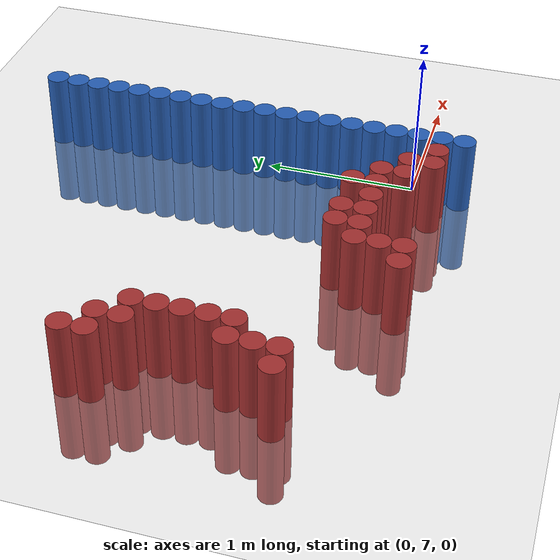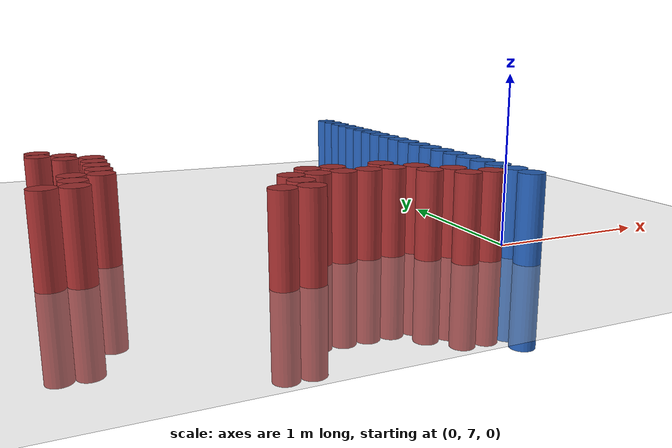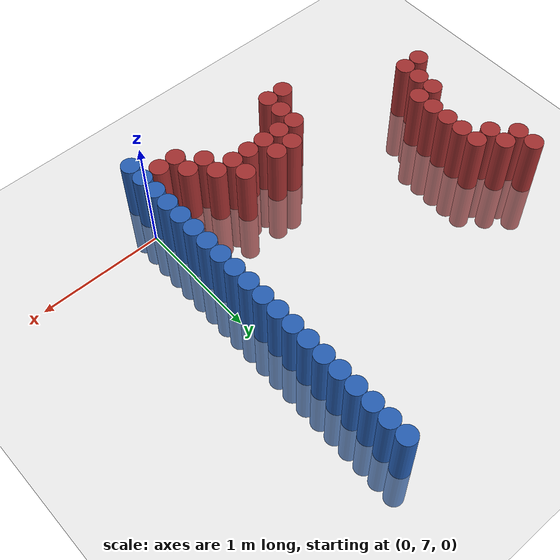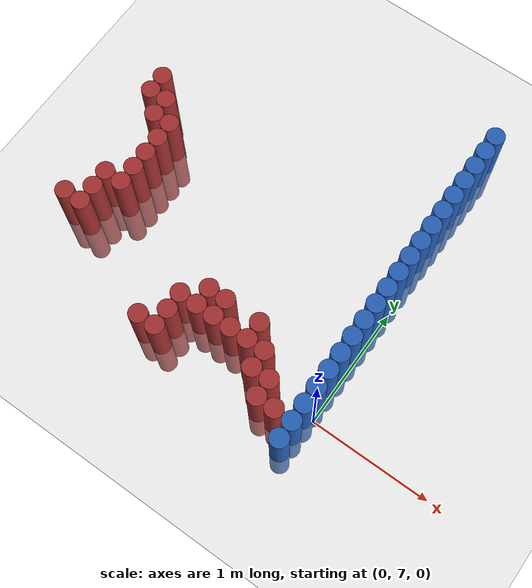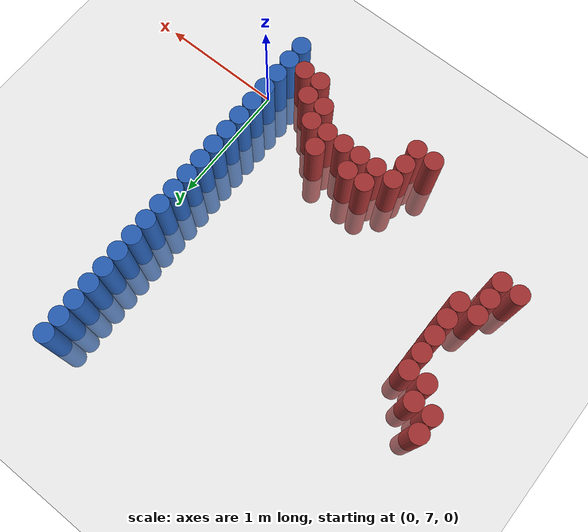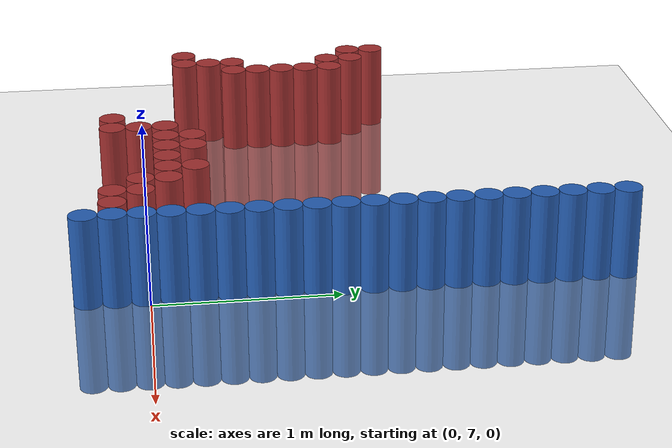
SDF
<sdf version="1.6">
 <world name="default">
  <model name="ground_plane">
   <static>1</static>
   <link name="link">
    <collision name="collision">
     <geometry><plane><normal>0 0 1</normal><size>100 100</size></plane></geometry>
     <surface><friction><ode><mu>100</mu><mu2>50</mu2></ode></friction></surface>
    </collision>
    <visual name="visual">
     <cast_shadows>0</cast_shadows>
     <geometry><plane><normal>0 0 1</normal><size>100 100</size></plane></geometry>
     <material>
      <script><uri>file://media/materials/scripts/gazebo.material</uri><name>Gazebo/Grey</name></script>
     </material>
    </visual>
   </link>
  </model>
  <model name="unit_cylinder_157">
   <static>1</static>
   <pose>-2.475000 7.275000 0.000000 0.000000 0.000000 0.000000</pose>
   <link name="link">
    <inertial>
     <mass>1</mass>
     <inertia><ixx>0.145833</ixx><ixy>0</ixy><ixz>0</ixz><iyy>0.145833</iyy><iyz>0</iyz><izz>0.125</izz></inertia>
    </inertial>
    <collision name="collision">
     <geometry><cylinder><radius>0.075000</radius><length>1</length></cylinder></geometry>
    </collision>
    <visual name="visual">
     <geometry><cylinder><radius>0.075000</radius><length>1</length></cylinder></geometry>
     <material>
      <ambient>0.648000 0.192000 0.192000 1</ambient>
      <diffuse>0.648000 0.192000 0.192000 1</diffuse>
     </material>
     <material>
      <script><name>Gazebo/Grey</name><uri>file://media/materials/scripts/gazebo.material</uri></script>
     </material>
    </visual>
   </link>
  </model>
  <model name="unit_cylinder_158">
   <static>1</static>
   <pose>-2.475000 8.325000 0.000000 0.000000 0.000000 0.000000</pose>
   <link name="link">
    <inertial>
     <mass>1</mass>
     <inertia><ixx>0.145833</ixx><ixy>0</ixy><ixz>0</ixz><iyy>0.145833</iyy><iyz>0</iyz><izz>0.125</izz></inertia>
    </inertial>
    <collision name="collision">
     <geometry><cylinder><radius>0.075000</radius><length>1</length></cylinder></geometry>
    </collision>
    <visual name="visual">
     <geometry><cylinder><radius>0.075000</radius><length>1</length></cylinder></geometry>
     <material>
      <ambient>0.648000 0.192000 0.192000 1</ambient>
      <diffuse>0.648000 0.192000 0.192000 1</diffuse>
     </material>
     <material>
      <script><name>Gazebo/Grey</name><uri>file://media/materials/scripts/gazebo.material</uri></script>
     </material>
    </visual>
   </link>
  </model>
  <model name="unit_cylinder_159">
   <static>1</static>
   <pose>-2.475000 8.475000 0.000000 0.000000 0.000000 0.000000</pose>
   <link name="link">
    <inertial>
     <mass>1</mass>
     <inertia><ixx>0.145833</ixx><ixy>0</ixy><ixz>0</ixz><iyy>0.145833</iyy><iyz>0</iyz><izz>0.125</izz></inertia>
    </inertial>
    <collision name="collision">
     <geometry><cylinder><radius>0.075000</radius><length>1</length></cylinder></geometry>
    </collision>
    <visual name="visual">
     <geometry><cylinder><radius>0.075000</radius><length>1</length></cylinder></geometry>
     <material>
      <ambient>0.648000 0.192000 0.192000 1</ambient>
      <diffuse>0.648000 0.192000 0.192000 1</diffuse>
     </material>
     <material>
      <script><name>Gazebo/Grey</name><uri>file://media/materials/scripts/gazebo.material</uri></script>
     </material>
    </visual>
   </link>
  </model>
  <model name="unit_cylinder_160">
   <static>1</static>
   <pose>-2.325000 7.275000 0.000000 0.000000 0.000000 0.000000</pose>
   <link name="link">
    <inertial>
     <mass>1</mass>
     <inertia><ixx>0.145833</ixx><ixy>0</ixy><ixz>0</ixz><iyy>0.145833</iyy><iyz>0</iyz><izz>0.125</izz></inertia>
    </inertial>
    <collision name="collision">
     <geometry><cylinder><radius>0.075000</radius><length>1</length></cylinder></geometry>
    </collision>
    <visual name="visual">
     <geometry><cylinder><radius>0.075000</radius><length>1</length></cylinder></geometry>
     <material>
      <ambient>0.648000 0.192000 0.192000 1</ambient>
      <diffuse>0.648000 0.192000 0.192000 1</diffuse>
     </material>
     <material>
      <script><name>Gazebo/Grey</name><uri>file://media/materials/scripts/gazebo.material</uri></script>
     </material>
    </visual>
   </link>
  </model>
  <model name="unit_cylinder_161">
   <static>1</static>
   <pose>-2.325000 7.425000 0.000000 0.000000 0.000000 0.000000</pose>
   <link name="link">
    <inertial>
     <mass>1</mass>
     <inertia><ixx>0.145833</ixx><ixy>0</ixy><ixz>0</ixz><iyy>0.145833</iyy><iyz>0</iyz><izz>0.125</izz></inertia>
    </inertial>
    <collision name="collision">
     <geometry><cylinder><radius>0.075000</radius><length>1</length></cylinder></geometry>
    </collision>
    <visual name="visual">
     <geometry><cylinder><radius>0.075000</radius><length>1</length></cylinder></geometry>
     <material>
      <ambient>0.648000 0.192000 0.192000 1</ambient>
      <diffuse>0.648000 0.192000 0.192000 1</diffuse>
     </material>
     <material>
      <script><name>Gazebo/Grey</name><uri>file://media/materials/scripts/gazebo.material</uri></script>
     </material>
    </visual>
   </link>
  </model>
  <model name="unit_cylinder_162">
   <static>1</static>
   <pose>-2.325000 7.575000 0.000000 0.000000 0.000000 0.000000</pose>
   <link name="link">
    <inertial>
     <mass>1</mass>
     <inertia><ixx>0.145833</ixx><ixy>0</ixy><ixz>0</ixz><iyy>0.145833</iyy><iyz>0</iyz><izz>0.125</izz></inertia>
    </inertial>
    <collision name="collision">
     <geometry><cylinder><radius>0.075000</radius><length>1</length></cylinder></geometry>
    </collision>
    <visual name="visual">
     <geometry><cylinder><radius>0.075000</radius><length>1</length></cylinder></geometry>
     <material>
      <ambient>0.648000 0.192000 0.192000 1</ambient>
      <diffuse>0.648000 0.192000 0.192000 1</diffuse>
     </material>
     <material>
      <script><name>Gazebo/Grey</name><uri>file://media/materials/scripts/gazebo.material</uri></script>
     </material>
    </visual>
   </link>
  </model>
  <model name="unit_cylinder_163">
   <static>1</static>
   <pose>-2.325000 8.175000 0.000000 0.000000 0.000000 0.000000</pose>
   <link name="link">
    <inertial>
     <mass>1</mass>
     <inertia><ixx>0.145833</ixx><ixy>0</ixy><ixz>0</ixz><iyy>0.145833</iyy><iyz>0</iyz><izz>0.125</izz></inertia>
    </inertial>
    <collision name="collision">
     <geometry><cylinder><radius>0.075000</radius><length>1</length></cylinder></geometry>
    </collision>
    <visual name="visual">
     <geometry><cylinder><radius>0.075000</radius><length>1</length></cylinder></geometry>
     <material>
      <ambient>0.648000 0.192000 0.192000 1</ambient>
      <diffuse>0.648000 0.192000 0.192000 1</diffuse>
     </material>
     <material>
      <script><name>Gazebo/Grey</name><uri>file://media/materials/scripts/gazebo.material</uri></script>
     </material>
    </visual>
   </link>
  </model>
  <model name="unit_cylinder_164">
   <static>1</static>
   <pose>-2.325000 8.325000 0.000000 0.000000 0.000000 0.000000</pose>
   <link name="link">
    <inertial>
     <mass>1</mass>
     <inertia><ixx>0.145833</ixx><ixy>0</ixy><ixz>0</ixz><iyy>0.145833</iyy><iyz>0</iyz><izz>0.125</izz></inertia>
    </inertial>
    <collision name="collision">
     <geometry><cylinder><radius>0.075000</radius><length>1</length></cylinder></geometry>
    </collision>
    <visual name="visual">
     <geometry><cylinder><radius>0.075000</radius><length>1</length></cylinder></geometry>
     <material>
      <ambient>0.648000 0.192000 0.192000 1</ambient>
      <diffuse>0.648000 0.192000 0.192000 1</diffuse>
     </material>
     <material>
      <script><name>Gazebo/Grey</name><uri>file://media/materials/scripts/gazebo.material</uri></script>
     </material>
    </visual>
   </link>
  </model>
  <model name="unit_cylinder_165">
   <static>1</static>
   <pose>-2.175000 7.575000 0.000000 0.000000 0.000000 0.000000</pose>
   <link name="link">
    <inertial>
     <mass>1</mass>
     <inertia><ixx>0.145833</ixx><ixy>0</ixy><ixz>0</ixz><iyy>0.145833</iyy><iyz>0</iyz><izz>0.125</izz></inertia>
    </inertial>
    <collision name="collision">
     <geometry><cylinder><radius>0.075000</radius><length>1</length></cylinder></geometry>
    </collision>
    <visual name="visual">
     <geometry><cylinder><radius>0.075000</radius><length>1</length></cylinder></geometry>
     <material>
      <ambient>0.648000 0.192000 0.192000 1</ambient>
      <diffuse>0.648000 0.192000 0.192000 1</diffuse>
     </material>
     <material>
      <script><name>Gazebo/Grey</name><uri>file://media/materials/scripts/gazebo.material</uri></script>
     </material>
    </visual>
   </link>
  </model>
  <model name="unit_cylinder_166">
   <static>1</static>
   <pose>-2.175000 7.725000 0.000000 0.000000 0.000000 0.000000</pose>
   <link name="link">
    <inertial>
     <mass>1</mass>
     <inertia><ixx>0.145833</ixx><ixy>0</ixy><ixz>0</ixz><iyy>0.145833</iyy><iyz>0</iyz><izz>0.125</izz></inertia>
    </inertial>
    <collision name="collision">
     <geometry><cylinder><radius>0.075000</radius><length>1</length></cylinder></geometry>
    </collision>
    <visual name="visual">
     <geometry><cylinder><radius>0.075000</radius><length>1</length></cylinder></geometry>
     <material>
      <ambient>0.648000 0.192000 0.192000 1</ambient>
      <diffuse>0.648000 0.192000 0.192000 1</diffuse>
     </material>
     <material>
      <script><name>Gazebo/Grey</name><uri>file://media/materials/scripts/gazebo.material</uri></script>
     </material>
    </visual>
   </link>
  </model>
  <model name="unit_cylinder_167">
   <static>1</static>
   <pose>-2.175000 7.875000 0.000000 0.000000 0.000000 0.000000</pose>
   <link name="link">
    <inertial>
     <mass>1</mass>
     <inertia><ixx>0.145833</ixx><ixy>0</ixy><ixz>0</ixz><iyy>0.145833</iyy><iyz>0</iyz><izz>0.125</izz></inertia>
    </inertial>
    <collision name="collision">
     <geometry><cylinder><radius>0.075000</radius><length>1</length></cylinder></geometry>
    </collision>
    <visual name="visual">
     <geometry><cylinder><radius>0.075000</radius><length>1</length></cylinder></geometry>
     <material>
      <ambient>0.648000 0.192000 0.192000 1</ambient>
      <diffuse>0.648000 0.192000 0.192000 1</diffuse>
     </material>
     <material>
      <script><name>Gazebo/Grey</name><uri>file://media/materials/scripts/gazebo.material</uri></script>
     </material>
    </visual>
   </link>
  </model>
  <model name="unit_cylinder_168">
   <static>1</static>
   <pose>-2.175000 8.025000 0.000000 0.000000 0.000000 0.000000</pose>
   <link name="link">
    <inertial>
     <mass>1</mass>
     <inertia><ixx>0.145833</ixx><ixy>0</ixy><ixz>0</ixz><iyy>0.145833</iyy><iyz>0</iyz><izz>0.125</izz></inertia>
    </inertial>
    <collision name="collision">
     <geometry><cylinder><radius>0.075000</radius><length>1</length></cylinder></geometry>
    </collision>
    <visual name="visual">
     <geometry><cylinder><radius>0.075000</radius><length>1</length></cylinder></geometry>
     <material>
      <ambient>0.648000 0.192000 0.192000 1</ambient>
      <diffuse>0.648000 0.192000 0.192000 1</diffuse>
     </material>
     <material>
      <script><name>Gazebo/Grey</name><uri>file://media/materials/scripts/gazebo.material</uri></script>
     </material>
    </visual>
   </link>
  </model>
  <model name="unit_cylinder_169">
   <static>1</static>
   <pose>-2.175000 8.175000 0.000000 0.000000 0.000000 0.000000</pose>
   <link name="link">
    <inertial>
     <mass>1</mass>
     <inertia><ixx>0.145833</ixx><ixy>0</ixy><ixz>0</ixz><iyy>0.145833</iyy><iyz>0</iyz><izz>0.125</izz></inertia>
    </inertial>
    <collision name="collision">
     <geometry><cylinder><radius>0.075000</radius><length>1</length></cylinder></geometry>
    </collision>
    <visual name="visual">
     <geometry><cylinder><radius>0.075000</radius><length>1</length></cylinder></geometry>
     <material>
      <ambient>0.648000 0.192000 0.192000 1</ambient>
      <diffuse>0.648000 0.192000 0.192000 1</diffuse>
     </material>
     <material>
      <script><name>Gazebo/Grey</name><uri>file://media/materials/scripts/gazebo.material</uri></script>
     </material>
    </visual>
   </link>
  </model>
  <model name="unit_cylinder_187">
   <static>1</static>
   <pose>-1.425000 6.825000 0.000000 0.000000 0.000000 0.000000</pose>
   <link name="link">
    <inertial>
     <mass>1</mass>
     <inertia><ixx>0.145833</ixx><ixy>0</ixy><ixz>0</ixz><iyy>0.145833</iyy><iyz>0</iyz><izz>0.125</izz></inertia>
    </inertial>
    <collision name="collision">
     <geometry><cylinder><radius>0.075000</radius><length>1</length></cylinder></geometry>
    </collision>
    <visual name="visual">
     <geometry><cylinder><radius>0.075000</radius><length>1</length></cylinder></geometry>
     <material>
      <ambient>0.648000 0.192000 0.192000 1</ambient>
      <diffuse>0.648000 0.192000 0.192000 1</diffuse>
     </material>
     <material>
      <script><name>Gazebo/Grey</name><uri>file://media/materials/scripts/gazebo.material</uri></script>
     </material>
    </visual>
   </link>
  </model>
  <model name="unit_cylinder_190">
   <static>1</static>
   <pose>-1.275000 6.825000 0.000000 0.000000 0.000000 0.000000</pose>
   <link name="link">
    <inertial>
     <mass>1</mass>
     <inertia><ixx>0.145833</ixx><ixy>0</ixy><ixz>0</ixz><iyy>0.145833</iyy><iyz>0</iyz><izz>0.125</izz></inertia>
    </inertial>
    <collision name="collision">
     <geometry><cylinder><radius>0.075000</radius><length>1</length></cylinder></geometry>
    </collision>
    <visual name="visual">
     <geometry><cylinder><radius>0.075000</radius><length>1</length></cylinder></geometry>
     <material>
      <ambient>0.648000 0.192000 0.192000 1</ambient>
      <diffuse>0.648000 0.192000 0.192000 1</diffuse>
     </material>
     <material>
      <script><name>Gazebo/Grey</name><uri>file://media/materials/scripts/gazebo.material</uri></script>
     </material>
    </visual>
   </link>
  </model>
  <model name="unit_cylinder_191">
   <static>1</static>
   <pose>-1.275000 6.975000 0.000000 0.000000 0.000000 0.000000</pose>
   <link name="link">
    <inertial>
     <mass>1</mass>
     <inertia><ixx>0.145833</ixx><ixy>0</ixy><ixz>0</ixz><iyy>0.145833</iyy><iyz>0</iyz><izz>0.125</izz></inertia>
    </inertial>
    <collision name="collision">
     <geometry><cylinder><radius>0.075000</radius><length>1</length></cylinder></geometry>
    </collision>
    <visual name="visual">
     <geometry><cylinder><radius>0.075000</radius><length>1</length></cylinder></geometry>
     <material>
      <ambient>0.648000 0.192000 0.192000 1</ambient>
      <diffuse>0.648000 0.192000 0.192000 1</diffuse>
     </material>
     <material>
      <script><name>Gazebo/Grey</name><uri>file://media/materials/scripts/gazebo.material</uri></script>
     </material>
    </visual>
   </link>
  </model>
  <model name="unit_cylinder_192">
   <static>1</static>
   <pose>-1.275000 7.125000 0.000000 0.000000 0.000000 0.000000</pose>
   <link name="link">
    <inertial>
     <mass>1</mass>
     <inertia><ixx>0.145833</ixx><ixy>0</ixy><ixz>0</ixz><iyy>0.145833</iyy><iyz>0</iyz><izz>0.125</izz></inertia>
    </inertial>
    <collision name="collision">
     <geometry><cylinder><radius>0.075000</radius><length>1</length></cylinder></geometry>
    </collision>
    <visual name="visual">
     <geometry><cylinder><radius>0.075000</radius><length>1</length></cylinder></geometry>
     <material>
      <ambient>0.648000 0.192000 0.192000 1</ambient>
      <diffuse>0.648000 0.192000 0.192000 1</diffuse>
     </material>
     <material>
      <script><name>Gazebo/Grey</name><uri>file://media/materials/scripts/gazebo.material</uri></script>
     </material>
    </visual>
   </link>
  </model>
  <model name="unit_cylinder_195">
   <static>1</static>
   <pose>-1.125000 7.125000 0.000000 0.000000 0.000000 0.000000</pose>
   <link name="link">
    <inertial>
     <mass>1</mass>
     <inertia><ixx>0.145833</ixx><ixy>0</ixy><ixz>0</ixz><iyy>0.145833</iyy><iyz>0</iyz><izz>0.125</izz></inertia>
    </inertial>
    <collision name="collision">
     <geometry><cylinder><radius>0.075000</radius><length>1</length></cylinder></geometry>
    </collision>
    <visual name="visual">
     <geometry><cylinder><radius>0.075000</radius><length>1</length></cylinder></geometry>
     <material>
      <ambient>0.648000 0.192000 0.192000 1</ambient>
      <diffuse>0.648000 0.192000 0.192000 1</diffuse>
     </material>
     <material>
      <script><name>Gazebo/Grey</name><uri>file://media/materials/scripts/gazebo.material</uri></script>
     </material>
    </visual>
   </link>
  </model>
  <model name="unit_cylinder_196">
   <static>1</static>
   <pose>-1.125000 7.275000 0.000000 0.000000 0.000000 0.000000</pose>
   <link name="link">
    <inertial>
     <mass>1</mass>
     <inertia><ixx>0.145833</ixx><ixy>0</ixy><ixz>0</ixz><iyy>0.145833</iyy><iyz>0</iyz><izz>0.125</izz></inertia>
    </inertial>
    <collision name="collision">
     <geometry><cylinder><radius>0.075000</radius><length>1</length></cylinder></geometry>
    </collision>
    <visual name="visual">
     <geometry><cylinder><radius>0.075000</radius><length>1</length></cylinder></geometry>
     <material>
      <ambient>0.648000 0.192000 0.192000 1</ambient>
      <diffuse>0.648000 0.192000 0.192000 1</diffuse>
     </material>
     <material>
      <script><name>Gazebo/Grey</name><uri>file://media/materials/scripts/gazebo.material</uri></script>
     </material>
    </visual>
   </link>
  </model>
  <model name="unit_cylinder_198">
   <static>1</static>
   <pose>-0.975000 7.125000 0.000000 0.000000 0.000000 0.000000</pose>
   <link name="link">
    <inertial>
     <mass>1</mass>
     <inertia><ixx>0.145833</ixx><ixy>0</ixy><ixz>0</ixz><iyy>0.145833</iyy><iyz>0</iyz><izz>0.125</izz></inertia>
    </inertial>
    <collision name="collision">
     <geometry><cylinder><radius>0.075000</radius><length>1</length></cylinder></geometry>
    </collision>
    <visual name="visual">
     <geometry><cylinder><radius>0.075000</radius><length>1</length></cylinder></geometry>
     <material>
      <ambient>0.648000 0.192000 0.192000 1</ambient>
      <diffuse>0.648000 0.192000 0.192000 1</diffuse>
     </material>
     <material>
      <script><name>Gazebo/Grey</name><uri>file://media/materials/scripts/gazebo.material</uri></script>
     </material>
    </visual>
   </link>
  </model>
  <model name="unit_cylinder_199">
   <static>1</static>
   <pose>-0.975000 7.275000 0.000000 0.000000 0.000000 0.000000</pose>
   <link name="link">
    <inertial>
     <mass>1</mass>
     <inertia><ixx>0.145833</ixx><ixy>0</ixy><ixz>0</ixz><iyy>0.145833</iyy><iyz>0</iyz><izz>0.125</izz></inertia>
    </inertial>
    <collision name="collision">
     <geometry><cylinder><radius>0.075000</radius><length>1</length></cylinder></geometry>
    </collision>
    <visual name="visual">
     <geometry><cylinder><radius>0.075000</radius><length>1</length></cylinder></geometry>
     <material>
      <ambient>0.648000 0.192000 0.192000 1</ambient>
      <diffuse>0.648000 0.192000 0.192000 1</diffuse>
     </material>
     <material>
      <script><name>Gazebo/Grey</name><uri>file://media/materials/scripts/gazebo.material</uri></script>
     </material>
    </visual>
   </link>
  </model>
  <model name="unit_cylinder_201">
   <static>1</static>
   <pose>-0.825000 7.125000 0.000000 0.000000 0.000000 0.000000</pose>
   <link name="link">
    <inertial>
     <mass>1</mass>
     <inertia><ixx>0.145833</ixx><ixy>0</ixy><ixz>0</ixz><iyy>0.145833</iyy><iyz>0</iyz><izz>0.125</izz></inertia>
    </inertial>
    <collision name="collision">
     <geometry><cylinder><radius>0.075000</radius><length>1</length></cylinder></geometry>
    </collision>
    <visual name="visual">
     <geometry><cylinder><radius>0.075000</radius><length>1</length></cylinder></geometry>
     <material>
      <ambient>0.648000 0.192000 0.192000 1</ambient>
      <diffuse>0.648000 0.192000 0.192000 1</diffuse>
     </material>
     <material>
      <script><name>Gazebo/Grey</name><uri>file://media/materials/scripts/gazebo.material</uri></script>
     </material>
    </visual>
   </link>
  </model>
  <model name="unit_cylinder_203">
   <static>1</static>
   <pose>-0.675000 7.125000 0.000000 0.000000 0.000000 0.000000</pose>
   <link name="link">
    <inertial>
     <mass>1</mass>
     <inertia><ixx>0.145833</ixx><ixy>0</ixy><ixz>0</ixz><iyy>0.145833</iyy><iyz>0</iyz><izz>0.125</izz></inertia>
    </inertial>
    <collision name="collision">
     <geometry><cylinder><radius>0.075000</radius><length>1</length></cylinder></geometry>
    </collision>
    <visual name="visual">
     <geometry><cylinder><radius>0.075000</radius><length>1</length></cylinder></geometry>
     <material>
      <ambient>0.648000 0.192000 0.192000 1</ambient>
      <diffuse>0.648000 0.192000 0.192000 1</diffuse>
     </material>
     <material>
      <script><name>Gazebo/Grey</name><uri>file://media/materials/scripts/gazebo.material</uri></script>
     </material>
    </visual>
   </link>
  </model>
  <model name="unit_cylinder_204">
   <static>1</static>
   <pose>-0.675000 7.275000 0.000000 0.000000 0.000000 0.000000</pose>
   <link name="link">
    <inertial>
     <mass>1</mass>
     <inertia><ixx>0.145833</ixx><ixy>0</ixy><ixz>0</ixz><iyy>0.145833</iyy><iyz>0</iyz><izz>0.125</izz></inertia>
    </inertial>
    <collision name="collision">
     <geometry><cylinder><radius>0.075000</radius><length>1</length></cylinder></geometry>
    </collision>
    <visual name="visual">
     <geometry><cylinder><radius>0.075000</radius><length>1</length></cylinder></geometry>
     <material>
      <ambient>0.648000 0.192000 0.192000 1</ambient>
      <diffuse>0.648000 0.192000 0.192000 1</diffuse>
     </material>
     <material>
      <script><name>Gazebo/Grey</name><uri>file://media/materials/scripts/gazebo.material</uri></script>
     </material>
    </visual>
   </link>
  </model>
  <model name="unit_cylinder_206">
   <static>1</static>
   <pose>-0.525000 6.975000 0.000000 0.000000 0.000000 0.000000</pose>
   <link name="link">
    <inertial>
     <mass>1</mass>
     <inertia><ixx>0.145833</ixx><ixy>0</ixy><ixz>0</ixz><iyy>0.145833</iyy><iyz>0</iyz><izz>0.125</izz></inertia>
    </inertial>
    <collision name="collision">
     <geometry><cylinder><radius>0.075000</radius><length>1</length></cylinder></geometry>
    </collision>
    <visual name="visual">
     <geometry><cylinder><radius>0.075000</radius><length>1</length></cylinder></geometry>
     <material>
      <ambient>0.648000 0.192000 0.192000 1</ambient>
      <diffuse>0.648000 0.192000 0.192000 1</diffuse>
     </material>
     <material>
      <script><name>Gazebo/Grey</name><uri>file://media/materials/scripts/gazebo.material</uri></script>
     </material>
    </visual>
   </link>
  </model>
  <model name="unit_cylinder_207">
   <static>1</static>
   <pose>-0.525000 7.125000 0.000000 0.000000 0.000000 0.000000</pose>
   <link name="link">
    <inertial>
     <mass>1</mass>
     <inertia><ixx>0.145833</ixx><ixy>0</ixy><ixz>0</ixz><iyy>0.145833</iyy><iyz>0</iyz><izz>0.125</izz></inertia>
    </inertial>
    <collision name="collision">
     <geometry><cylinder><radius>0.075000</radius><length>1</length></cylinder></geometry>
    </collision>
    <visual name="visual">
     <geometry><cylinder><radius>0.075000</radius><length>1</length></cylinder></geometry>
     <material>
      <ambient>0.648000 0.192000 0.192000 1</ambient>
      <diffuse>0.648000 0.192000 0.192000 1</diffuse>
     </material>
     <material>
      <script><name>Gazebo/Grey</name><uri>file://media/materials/scripts/gazebo.material</uri></script>
     </material>
    </visual>
   </link>
  </model>
  <model name="unit_cylinder_209">
   <static>1</static>
   <pose>-0.375000 6.825000 0.000000 0.000000 0.000000 0.000000</pose>
   <link name="link">
    <inertial>
     <mass>1</mass>
     <inertia><ixx>0.145833</ixx><ixy>0</ixy><ixz>0</ixz><iyy>0.145833</iyy><iyz>0</iyz><izz>0.125</izz></inertia>
    </inertial>
    <collision name="collision">
     <geometry><cylinder><radius>0.075000</radius><length>1</length></cylinder></geometry>
    </collision>
    <visual name="visual">
     <geometry><cylinder><radius>0.075000</radius><length>1</length></cylinder></geometry>
     <material>
      <ambient>0.648000 0.192000 0.192000 1</ambient>
      <diffuse>0.648000 0.192000 0.192000 1</diffuse>
     </material>
     <material>
      <script><name>Gazebo/Grey</name><uri>file://media/materials/scripts/gazebo.material</uri></script>
     </material>
    </visual>
   </link>
  </model>
  <model name="unit_cylinder_210">
   <static>1</static>
   <pose>-0.375000 6.975000 0.000000 0.000000 0.000000 0.000000</pose>
   <link name="link">
    <inertial>
     <mass>1</mass>
     <inertia><ixx>0.145833</ixx><ixy>0</ixy><ixz>0</ixz><iyy>0.145833</iyy><iyz>0</iyz><izz>0.125</izz></inertia>
    </inertial>
    <collision name="collision">
     <geometry><cylinder><radius>0.075000</radius><length>1</length></cylinder></geometry>
    </collision>
    <visual name="visual">
     <geometry><cylinder><radius>0.075000</radius><length>1</length></cylinder></geometry>
     <material>
      <ambient>0.648000 0.192000 0.192000 1</ambient>
      <diffuse>0.648000 0.192000 0.192000 1</diffuse>
     </material>
     <material>
      <script><name>Gazebo/Grey</name><uri>file://media/materials/scripts/gazebo.material</uri></script>
     </material>
    </visual>
   </link>
  </model>
  <model name="unit_cylinder_212">
   <static>1</static>
   <pose>-0.225000 6.825000 0.000000 0.000000 0.000000 0.000000</pose>
   <link name="link">
    <inertial>
     <mass>1</mass>
     <inertia><ixx>0.145833</ixx><ixy>0</ixy><ixz>0</ixz><iyy>0.145833</iyy><iyz>0</iyz><izz>0.125</izz></inertia>
    </inertial>
    <collision name="collision">
     <geometry><cylinder><radius>0.075000</radius><length>1</length></cylinder></geometry>
    </collision>
    <visual name="visual">
     <geometry><cylinder><radius>0.075000</radius><length>1</length></cylinder></geometry>
     <material>
      <ambient>0.648000 0.192000 0.192000 1</ambient>
      <diffuse>0.648000 0.192000 0.192000 1</diffuse>
     </material>
     <material>
      <script><name>Gazebo/Grey</name><uri>file://media/materials/scripts/gazebo.material</uri></script>
     </material>
    </visual>
   </link>
  </model>
  <model name="unit_cylinder_223">
   <static>1</static>
   <pose>-0.075000 6.675000 0.000000 0.000000 0.000000 0.000000</pose>
   <link name="link">
    <inertial>
     <mass>1</mass>
     <inertia><ixx>0.145833</ixx><ixy>0</ixy><ixz>0</ixz><iyy>0.145833</iyy><iyz>0</iyz><izz>0.125</izz></inertia>
    </inertial>
    <collision name="collision">
     <geometry><cylinder><radius>0.075000</radius><length>1</length></cylinder></geometry>
    </collision>
    <visual name="visual">
     <geometry><cylinder><radius>0.075000</radius><length>1</length></cylinder></geometry>
     <material>
      <ambient>0.152000 0.379000 0.720000 1</ambient>
      <diffuse>0.152000 0.379000 0.720000 1</diffuse>
     </material>
     <material>
      <script><name>Gazebo/Grey</name><uri>file://media/materials/scripts/gazebo.material</uri></script>
     </material>
    </visual>
   </link>
  </model>
  <model name="unit_cylinder_224">
   <static>1</static>
   <pose>-0.075000 6.825000 0.000000 0.000000 0.000000 0.000000</pose>
   <link name="link">
    <inertial>
     <mass>1</mass>
     <inertia><ixx>0.145833</ixx><ixy>0</ixy><ixz>0</ixz><iyy>0.145833</iyy><iyz>0</iyz><izz>0.125</izz></inertia>
    </inertial>
    <collision name="collision">
     <geometry><cylinder><radius>0.075000</radius><length>1</length></cylinder></geometry>
    </collision>
    <visual name="visual">
     <geometry><cylinder><radius>0.075000</radius><length>1</length></cylinder></geometry>
     <material>
      <ambient>0.152000 0.379000 0.720000 1</ambient>
      <diffuse>0.152000 0.379000 0.720000 1</diffuse>
     </material>
     <material>
      <script><name>Gazebo/Grey</name><uri>file://media/materials/scripts/gazebo.material</uri></script>
     </material>
    </visual>
   </link>
  </model>
  <model name="unit_cylinder_225">
   <static>1</static>
   <pose>-0.075000 6.975000 0.000000 0.000000 0.000000 0.000000</pose>
   <link name="link">
    <inertial>
     <mass>1</mass>
     <inertia><ixx>0.145833</ixx><ixy>0</ixy><ixz>0</ixz><iyy>0.145833</iyy><iyz>0</iyz><izz>0.125</izz></inertia>
    </inertial>
    <collision name="collision">
     <geometry><cylinder><radius>0.075000</radius><length>1</length></cylinder></geometry>
    </collision>
    <visual name="visual">
     <geometry><cylinder><radius>0.075000</radius><length>1</length></cylinder></geometry>
     <material>
      <ambient>0.152000 0.379000 0.720000 1</ambient>
      <diffuse>0.152000 0.379000 0.720000 1</diffuse>
     </material>
     <material>
      <script><name>Gazebo/Grey</name><uri>file://media/materials/scripts/gazebo.material</uri></script>
     </material>
    </visual>
   </link>
  </model>
  <model name="unit_cylinder_226">
   <static>1</static>
   <pose>-0.075000 7.125000 0.000000 0.000000 0.000000 0.000000</pose>
   <link name="link">
    <inertial>
     <mass>1</mass>
     <inertia><ixx>0.145833</ixx><ixy>0</ixy><ixz>0</ixz><iyy>0.145833</iyy><iyz>0</iyz><izz>0.125</izz></inertia>
    </inertial>
    <collision name="collision">
     <geometry><cylinder><radius>0.075000</radius><length>1</length></cylinder></geometry>
    </collision>
    <visual name="visual">
     <geometry><cylinder><radius>0.075000</radius><length>1</length></cylinder></geometry>
     <material>
      <ambient>0.152000 0.379000 0.720000 1</ambient>
      <diffuse>0.152000 0.379000 0.720000 1</diffuse>
     </material>
     <material>
      <script><name>Gazebo/Grey</name><uri>file://media/materials/scripts/gazebo.material</uri></script>
     </material>
    </visual>
   </link>
  </model>
  <model name="unit_cylinder_227">
   <static>1</static>
   <pose>-0.075000 7.275000 0.000000 0.000000 0.000000 0.000000</pose>
   <link name="link">
    <inertial>
     <mass>1</mass>
     <inertia><ixx>0.145833</ixx><ixy>0</ixy><ixz>0</ixz><iyy>0.145833</iyy><iyz>0</iyz><izz>0.125</izz></inertia>
    </inertial>
    <collision name="collision">
     <geometry><cylinder><radius>0.075000</radius><length>1</length></cylinder></geometry>
    </collision>
    <visual name="visual">
     <geometry><cylinder><radius>0.075000</radius><length>1</length></cylinder></geometry>
     <material>
      <ambient>0.152000 0.379000 0.720000 1</ambient>
      <diffuse>0.152000 0.379000 0.720000 1</diffuse>
     </material>
     <material>
      <script><name>Gazebo/Grey</name><uri>file://media/materials/scripts/gazebo.material</uri></script>
     </material>
    </visual>
   </link>
  </model>
  <model name="unit_cylinder_228">
   <static>1</static>
   <pose>-0.075000 7.425000 0.000000 0.000000 0.000000 0.000000</pose>
   <link name="link">
    <inertial>
     <mass>1</mass>
     <inertia><ixx>0.145833</ixx><ixy>0</ixy><ixz>0</ixz><iyy>0.145833</iyy><iyz>0</iyz><izz>0.125</izz></inertia>
    </inertial>
    <collision name="collision">
     <geometry><cylinder><radius>0.075000</radius><length>1</length></cylinder></geometry>
    </collision>
    <visual name="visual">
     <geometry><cylinder><radius>0.075000</radius><length>1</length></cylinder></geometry>
     <material>
      <ambient>0.152000 0.379000 0.720000 1</ambient>
      <diffuse>0.152000 0.379000 0.720000 1</diffuse>
     </material>
     <material>
      <script><name>Gazebo/Grey</name><uri>file://media/materials/scripts/gazebo.material</uri></script>
     </material>
    </visual>
   </link>
  </model>
  <model name="unit_cylinder_229">
   <static>1</static>
   <pose>-0.075000 7.575000 0.000000 0.000000 0.000000 0.000000</pose>
   <link name="link">
    <inertial>
     <mass>1</mass>
     <inertia><ixx>0.145833</ixx><ixy>0</ixy><ixz>0</ixz><iyy>0.145833</iyy><iyz>0</iyz><izz>0.125</izz></inertia>
    </inertial>
    <collision name="collision">
     <geometry><cylinder><radius>0.075000</radius><length>1</length></cylinder></geometry>
    </collision>
    <visual name="visual">
     <geometry><cylinder><radius>0.075000</radius><length>1</length></cylinder></geometry>
     <material>
      <ambient>0.152000 0.379000 0.720000 1</ambient>
      <diffuse>0.152000 0.379000 0.720000 1</diffuse>
     </material>
     <material>
      <script><name>Gazebo/Grey</name><uri>file://media/materials/scripts/gazebo.material</uri></script>
     </material>
    </visual>
   </link>
  </model>
  <model name="unit_cylinder_230">
   <static>1</static>
   <pose>-0.075000 7.725000 0.000000 0.000000 0.000000 0.000000</pose>
   <link name="link">
    <inertial>
     <mass>1</mass>
     <inertia><ixx>0.145833</ixx><ixy>0</ixy><ixz>0</ixz><iyy>0.145833</iyy><iyz>0</iyz><izz>0.125</izz></inertia>
    </inertial>
    <collision name="collision">
     <geometry><cylinder><radius>0.075000</radius><length>1</length></cylinder></geometry>
    </collision>
    <visual name="visual">
     <geometry><cylinder><radius>0.075000</radius><length>1</length></cylinder></geometry>
     <material>
      <ambient>0.152000 0.379000 0.720000 1</ambient>
      <diffuse>0.152000 0.379000 0.720000 1</diffuse>
     </material>
     <material>
      <script><name>Gazebo/Grey</name><uri>file://media/materials/scripts/gazebo.material</uri></script>
     </material>
    </visual>
   </link>
  </model>
  <model name="unit_cylinder_231">
   <static>1</static>
   <pose>-0.075000 7.875000 0.000000 0.000000 0.000000 0.000000</pose>
   <link name="link">
    <inertial>
     <mass>1</mass>
     <inertia><ixx>0.145833</ixx><ixy>0</ixy><ixz>0</ixz><iyy>0.145833</iyy><iyz>0</iyz><izz>0.125</izz></inertia>
    </inertial>
    <collision name="collision">
     <geometry><cylinder><radius>0.075000</radius><length>1</length></cylinder></geometry>
    </collision>
    <visual name="visual">
     <geometry><cylinder><radius>0.075000</radius><length>1</length></cylinder></geometry>
     <material>
      <ambient>0.152000 0.379000 0.720000 1</ambient>
      <diffuse>0.152000 0.379000 0.720000 1</diffuse>
     </material>
     <material>
      <script><name>Gazebo/Grey</name><uri>file://media/materials/scripts/gazebo.material</uri></script>
     </material>
    </visual>
   </link>
  </model>
  <model name="unit_cylinder_232">
   <static>1</static>
   <pose>-0.075000 8.025000 0.000000 0.000000 0.000000 0.000000</pose>
   <link name="link">
    <inertial>
     <mass>1</mass>
     <inertia><ixx>0.145833</ixx><ixy>0</ixy><ixz>0</ixz><iyy>0.145833</iyy><iyz>0</iyz><izz>0.125</izz></inertia>
    </inertial>
    <collision name="collision">
     <geometry><cylinder><radius>0.075000</radius><length>1</length></cylinder></geometry>
    </collision>
    <visual name="visual">
     <geometry><cylinder><radius>0.075000</radius><length>1</length></cylinder></geometry>
     <material>
      <ambient>0.152000 0.379000 0.720000 1</ambient>
      <diffuse>0.152000 0.379000 0.720000 1</diffuse>
     </material>
     <material>
      <script><name>Gazebo/Grey</name><uri>file://media/materials/scripts/gazebo.material</uri></script>
     </material>
    </visual>
   </link>
  </model>
  <model name="unit_cylinder_233">
   <static>1</static>
   <pose>-0.075000 8.175000 0.000000 0.000000 0.000000 0.000000</pose>
   <link name="link">
    <inertial>
     <mass>1</mass>
     <inertia><ixx>0.145833</ixx><ixy>0</ixy><ixz>0</ixz><iyy>0.145833</iyy><iyz>0</iyz><izz>0.125</izz></inertia>
    </inertial>
    <collision name="collision">
     <geometry><cylinder><radius>0.075000</radius><length>1</length></cylinder></geometry>
    </collision>
    <visual name="visual">
     <geometry><cylinder><radius>0.075000</radius><length>1</length></cylinder></geometry>
     <material>
      <ambient>0.152000 0.379000 0.720000 1</ambient>
      <diffuse>0.152000 0.379000 0.720000 1</diffuse>
     </material>
     <material>
      <script><name>Gazebo/Grey</name><uri>file://media/materials/scripts/gazebo.material</uri></script>
     </material>
    </visual>
   </link>
  </model>
  <model name="unit_cylinder_234">
   <static>1</static>
   <pose>-0.075000 8.325000 0.000000 0.000000 0.000000 0.000000</pose>
   <link name="link">
    <inertial>
     <mass>1</mass>
     <inertia><ixx>0.145833</ixx><ixy>0</ixy><ixz>0</ixz><iyy>0.145833</iyy><iyz>0</iyz><izz>0.125</izz></inertia>
    </inertial>
    <collision name="collision">
     <geometry><cylinder><radius>0.075000</radius><length>1</length></cylinder></geometry>
    </collision>
    <visual name="visual">
     <geometry><cylinder><radius>0.075000</radius><length>1</length></cylinder></geometry>
     <material>
      <ambient>0.152000 0.379000 0.720000 1</ambient>
      <diffuse>0.152000 0.379000 0.720000 1</diffuse>
     </material>
     <material>
      <script><name>Gazebo/Grey</name><uri>file://media/materials/scripts/gazebo.material</uri></script>
     </material>
    </visual>
   </link>
  </model>
  <model name="unit_cylinder_235">
   <static>1</static>
   <pose>-0.075000 8.475000 0.000000 0.000000 0.000000 0.000000</pose>
   <link name="link">
    <inertial>
     <mass>1</mass>
     <inertia><ixx>0.145833</ixx><ixy>0</ixy><ixz>0</ixz><iyy>0.145833</iyy><iyz>0</iyz><izz>0.125</izz></inertia>
    </inertial>
    <collision name="collision">
     <geometry><cylinder><radius>0.075000</radius><length>1</length></cylinder></geometry>
    </collision>
    <visual name="visual">
     <geometry><cylinder><radius>0.075000</radius><length>1</length></cylinder></geometry>
     <material>
      <ambient>0.152000 0.379000 0.720000 1</ambient>
      <diffuse>0.152000 0.379000 0.720000 1</diffuse>
     </material>
     <material>
      <script><name>Gazebo/Grey</name><uri>file://media/materials/scripts/gazebo.material</uri></script>
     </material>
    </visual>
   </link>
  </model>
  <model name="unit_cylinder_236">
   <static>1</static>
   <pose>-0.075000 8.625000 0.000000 0.000000 0.000000 0.000000</pose>
   <link name="link">
    <inertial>
     <mass>1</mass>
     <inertia><ixx>0.145833</ixx><ixy>0</ixy><ixz>0</ixz><iyy>0.145833</iyy><iyz>0</iyz><izz>0.125</izz></inertia>
    </inertial>
    <collision name="collision">
     <geometry><cylinder><radius>0.075000</radius><length>1</length></cylinder></geometry>
    </collision>
    <visual name="visual">
     <geometry><cylinder><radius>0.075000</radius><length>1</length></cylinder></geometry>
     <material>
      <ambient>0.152000 0.379000 0.720000 1</ambient>
      <diffuse>0.152000 0.379000 0.720000 1</diffuse>
     </material>
     <material>
      <script><name>Gazebo/Grey</name><uri>file://media/materials/scripts/gazebo.material</uri></script>
     </material>
    </visual>
   </link>
  </model>
  <model name="unit_cylinder_237">
   <static>1</static>
   <pose>-0.075000 8.775000 0.000000 0.000000 0.000000 0.000000</pose>
   <link name="link">
    <inertial>
     <mass>1</mass>
     <inertia><ixx>0.145833</ixx><ixy>0</ixy><ixz>0</ixz><iyy>0.145833</iyy><iyz>0</iyz><izz>0.125</izz></inertia>
    </inertial>
    <collision name="collision">
     <geometry><cylinder><radius>0.075000</radius><length>1</length></cylinder></geometry>
    </collision>
    <visual name="visual">
     <geometry><cylinder><radius>0.075000</radius><length>1</length></cylinder></geometry>
     <material>
      <ambient>0.152000 0.379000 0.720000 1</ambient>
      <diffuse>0.152000 0.379000 0.720000 1</diffuse>
     </material>
     <material>
      <script><name>Gazebo/Grey</name><uri>file://media/materials/scripts/gazebo.material</uri></script>
     </material>
    </visual>
   </link>
  </model>
  <model name="unit_cylinder_238">
   <static>1</static>
   <pose>-0.075000 8.925000 0.000000 0.000000 0.000000 0.000000</pose>
   <link name="link">
    <inertial>
     <mass>1</mass>
     <inertia><ixx>0.145833</ixx><ixy>0</ixy><ixz>0</ixz><iyy>0.145833</iyy><iyz>0</iyz><izz>0.125</izz></inertia>
    </inertial>
    <collision name="collision">
     <geometry><cylinder><radius>0.075000</radius><length>1</length></cylinder></geometry>
    </collision>
    <visual name="visual">
     <geometry><cylinder><radius>0.075000</radius><length>1</length></cylinder></geometry>
     <material>
      <ambient>0.152000 0.379000 0.720000 1</ambient>
      <diffuse>0.152000 0.379000 0.720000 1</diffuse>
     </material>
     <material>
      <script><name>Gazebo/Grey</name><uri>file://media/materials/scripts/gazebo.material</uri></script>
     </material>
    </visual>
   </link>
  </model>
  <model name="unit_cylinder_239">
   <static>1</static>
   <pose>-0.075000 9.075000 0.000000 0.000000 0.000000 0.000000</pose>
   <link name="link">
    <inertial>
     <mass>1</mass>
     <inertia><ixx>0.145833</ixx><ixy>0</ixy><ixz>0</ixz><iyy>0.145833</iyy><iyz>0</iyz><izz>0.125</izz></inertia>
    </inertial>
    <collision name="collision">
     <geometry><cylinder><radius>0.075000</radius><length>1</length></cylinder></geometry>
    </collision>
    <visual name="visual">
     <geometry><cylinder><radius>0.075000</radius><length>1</length></cylinder></geometry>
     <material>
      <ambient>0.152000 0.379000 0.720000 1</ambient>
      <diffuse>0.152000 0.379000 0.720000 1</diffuse>
     </material>
     <material>
      <script><name>Gazebo/Grey</name><uri>file://media/materials/scripts/gazebo.material</uri></script>
     </material>
    </visual>
   </link>
  </model>
  <model name="unit_cylinder_240">
   <static>1</static>
   <pose>-0.075000 9.225000 0.000000 0.000000 0.000000 0.000000</pose>
   <link name="link">
    <inertial>
     <mass>1</mass>
     <inertia><ixx>0.145833</ixx><ixy>0</ixy><ixz>0</ixz><iyy>0.145833</iyy><iyz>0</iyz><izz>0.125</izz></inertia>
    </inertial>
    <collision name="collision">
     <geometry><cylinder><radius>0.075000</radius><length>1</length></cylinder></geometry>
    </collision>
    <visual name="visual">
     <geometry><cylinder><radius>0.075000</radius><length>1</length></cylinder></geometry>
     <material>
      <ambient>0.152000 0.379000 0.720000 1</ambient>
      <diffuse>0.152000 0.379000 0.720000 1</diffuse>
     </material>
     <material>
      <script><name>Gazebo/Grey</name><uri>file://media/materials/scripts/gazebo.material</uri></script>
     </material>
    </visual>
   </link>
  </model>
  <model name="unit_cylinder_241">
   <static>1</static>
   <pose>-0.075000 9.375000 0.000000 0.000000 0.000000 0.000000</pose>
   <link name="link">
    <inertial>
     <mass>1</mass>
     <inertia><ixx>0.145833</ixx><ixy>0</ixy><ixz>0</ixz><iyy>0.145833</iyy><iyz>0</iyz><izz>0.125</izz></inertia>
    </inertial>
    <collision name="collision">
     <geometry><cylinder><radius>0.075000</radius><length>1</length></cylinder></geometry>
    </collision>
    <visual name="visual">
     <geometry><cylinder><radius>0.075000</radius><length>1</length></cylinder></geometry>
     <material>
      <ambient>0.152000 0.379000 0.720000 1</ambient>
      <diffuse>0.152000 0.379000 0.720000 1</diffuse>
     </material>
     <material>
      <script><name>Gazebo/Grey</name><uri>file://media/materials/scripts/gazebo.material</uri></script>
     </material>
    </visual>
   </link>
  </model>
  <model name="unit_cylinder_242">
   <static>1</static>
   <pose>-0.075000 9.525000 0.000000 0.000000 0.000000 0.000000</pose>
   <link name="link">
    <inertial>
     <mass>1</mass>
     <inertia><ixx>0.145833</ixx><ixy>0</ixy><ixz>0</ixz><iyy>0.145833</iyy><iyz>0</iyz><izz>0.125</izz></inertia>
    </inertial>
    <collision name="collision">
     <geometry><cylinder><radius>0.075000</radius><length>1</length></cylinder></geometry>
    </collision>
    <visual name="visual">
     <geometry><cylinder><radius>0.075000</radius><length>1</length></cylinder></geometry>
     <material>
      <ambient>0.152000 0.379000 0.720000 1</ambient>
      <diffuse>0.152000 0.379000 0.720000 1</diffuse>
     </material>
     <material>
      <script><name>Gazebo/Grey</name><uri>file://media/materials/scripts/gazebo.material</uri></script>
     </material>
    </visual>
   </link>
  </model>
 </world>
</sdf>
